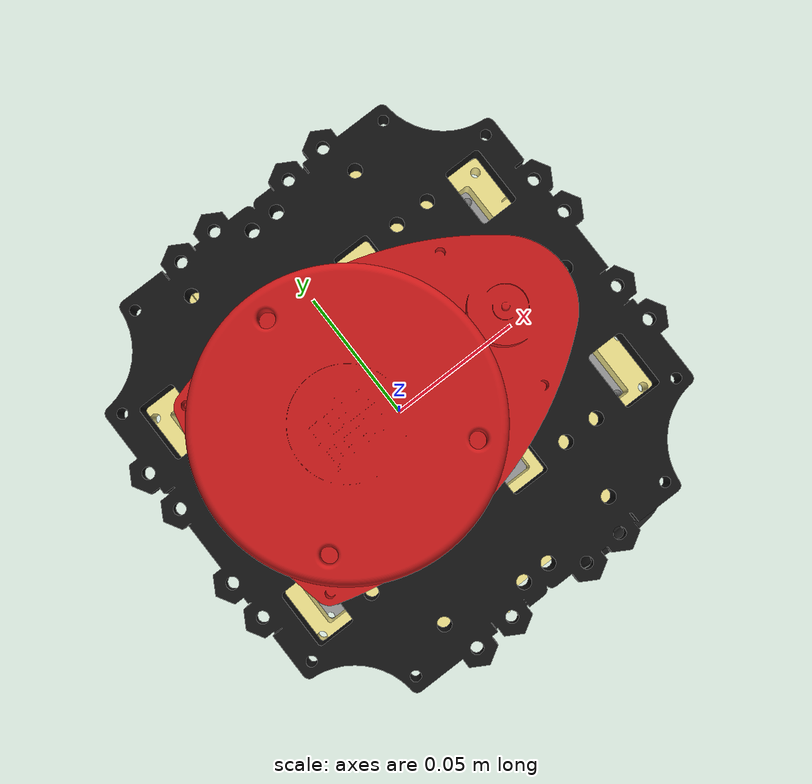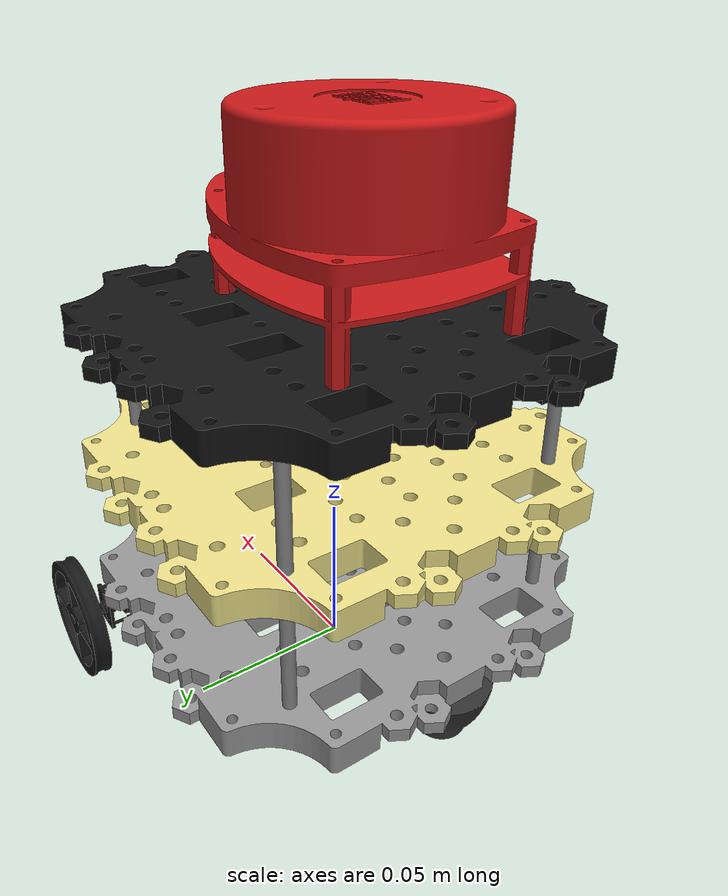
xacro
<?xml version="1.0"?>
<robot name="amr_n20" xmlns:xacro="http://www.ros.org/wiki/xacro">

  <!-- ========== 1. XACRO PROPERTIES (edit here, not below) ========== -->

  <!-- Chassis (waffle plate) -->
  <xacro:property name="chassis_length"  value="0.14"/>
  <xacro:property name="chassis_width"   value="0.14"/>
  <xacro:property name="chassis_height"  value="0.009"/>
  <xacro:property name="chassis_mass"    value="0.5"/>

  <!-- Wheels (N20 + GA12-N20 rim + rubber tire) -->
  <xacro:property name="wheel_radius"      value="0.0215"/>
  <xacro:property name="wheel_thickness"   value="0.015"/>
  <xacro:property name="wheel_separation"  value="0.152"/>   <!-- center-to-center -->
  <xacro:property name="wheel_mass"        value="0.05"/>    <!-- ESTIMATE -->
  <xacro:property name="wheel_offset_x" value="0.03"/>  <!-- Newly added 1 ASSUMPTION: tune to balance -->

  <!-- Caster -->
  <xacro:property name="caster_radius"   value="0.0135"/>
  <xacro:property name="caster_mass"     value="0.09"/>      <!-- ESTIMATE -->
  <xacro:property name="caster_offset_x" value="-0.055"/>    <!-- ASSUMPTION: verify -->

  <!-- N20 Encoded Motor -->
  <xacro:property name="motor_mass"     value="0.02"/>  <!-- ESTIMATE -->
  <xacro:property name="motor_offset_x" value="-0.02"/> <!-- how far inboard (toward center) from wheel, ASSUMPTION -->

  <!-- Electronics tower — ESTIMATED FROM PHOTO, verify & correct -->
  <xacro:property name="tier1_standoff_h" value="0.035"/>  <!-- changed1 -->
  <xacro:property name="tier1_deck_size"  value="0.14"/>  <!-- changed1 -->
  <xacro:property name="tier1_deck_t"     value="0.009"/>  <!-- same plate stock as chassis -->

  <xacro:property name="tier3_standoff_h" value="0.035"/>  <!-- changed2 -->
  <xacro:property name="tier3_deck_size"  value="0.14"/>
  <xacro:property name="tier3_deck_t"     value="0.009"/>  <!-- changed1 -->

  <xacro:property name="standoff_radius"  value="0.002"/>
  <xacro:property name="deck_mass"        value="0.03"/>     <!-- ESTIMATE, per deck -->

  <!-- Lidar (RPLIDAR A1M8) -->
  <xacro:property name="lidar_radius"    value="0.049"/>
  <xacro:property name="lidar_height"    value="0.0577"/>  <!-- corrected: true up-axis extent post-rotation -->
  <xacro:property name="lidar_mass"      value="0.19"/>

  <xacro:property name="PI" value="3.14159265"/>

  <!-- ========== 2. MATERIALS (for RViz, meshes have no color) ========== -->

  <material name="chassis_grey">
    <color rgba="0.6 0.6 0.6 1.0"/>
  </material>
  <material name="wheel_black">
    <color rgba="0.1 0.1 0.1 1.0"/>
  </material>
  <material name="caster_dark">
    <color rgba="0.2 0.2 0.2 1.0"/>
  </material>
  <material name="lidar_red">
    <color rgba="0.8 0.1 0.1 1.0"/>
  </material>
  <material name="deck_yellow">
    <color rgba="0.95 0.9 0.55 1.0"/>
  </material>
  <material name="deck_black">
    <color rgba="0.08 0.08 0.08 1.0"/>
  </material>
  <material name="standoff_grey">
    <color rgba="0.55 0.55 0.55 1.0"/>
  </material>

  <!-- ========== 3. REUSABLE INERTIA MACROS ========== -->

  <xacro:macro name="box_inertia" params="mass x y z">
    <inertia
      ixx="${(1/12)*mass*(y*y+z*z)}" ixy="0.0" ixz="0.0"
      iyy="${(1/12)*mass*(x*x+z*z)}" iyz="0.0"
      izz="${(1/12)*mass*(x*x+y*y)}"/>
  </xacro:macro>

  <xacro:macro name="cylinder_inertia" params="mass r h">
    <inertia
      ixx="${(1/12)*mass*(3*r*r+h*h)}" ixy="0.0" ixz="0.0"
      iyy="${(1/12)*mass*(3*r*r+h*h)}" iyz="0.0"
      izz="${(1/2)*mass*r*r}"/>
  </xacro:macro>

  <xacro:macro name="sphere_inertia" params="mass r">
    <inertia
      ixx="${(2/5)*mass*r*r}" ixy="0.0" ixz="0.0"
      iyy="${(2/5)*mass*r*r}" iyz="0.0"
      izz="${(2/5)*mass*r*r}"/>
  </xacro:macro>

  <!-- ============================================================
       4. BASE FOOTPRINT — massless reference frame at ground level
       ============================================================ -->

  <link name="base_footprint"/>

  <joint name="base_joint" type="fixed">
    <parent link="base_footprint"/>
    <child link="base_link"/>
    <origin xyz="0 0 ${wheel_radius}" rpy="0 0 0"/>
  </joint>

  <!-- ============================================================
       5. BASE LINK — the waffle plate chassis
       ============================================================ -->

  <link name="base_link">
    <visual>
      <origin xyz="0 0 ${chassis_height/2}" rpy="0 0 0"/>
      <geometry>
        <mesh filename="package://my_turtlebot_pkg/meshes/waffleplate.stl" scale="1 1 1"/>
      </geometry>
      <material name="chassis_grey"/>
    </visual>
    <collision>
      <origin xyz="0 0 ${chassis_height/2}" rpy="0 0 0"/>
      <geometry>
        <box size="${chassis_length} ${chassis_width} ${chassis_height}"/>
      </geometry>
    </collision>
    <inertial>
      <origin xyz="0 0 ${chassis_height/2}" rpy="0 0 0"/>
      <mass value="${chassis_mass}"/>
      <xacro:box_inertia mass="${chassis_mass}" x="${chassis_length}" y="${chassis_width}" z="${chassis_height}"/>
    </inertial>
  </link>

  <!-- ============================================================
       6. WHEELS
       ============================================================ -->

  <xacro:macro name="wheel" params="prefix reflect">
    <link name="${prefix}_wheel_link">
      <visual>
        <origin xyz="0 0 0" rpy="${PI/2} 0 0"/>
        <geometry>
          <mesh filename="package://my_turtlebot_pkg/meshes/n20wheels.stl" scale="1 1 1"/>
        </geometry>
        <material name="wheel_black"/>
      </visual>
      <collision>
        <origin xyz="0 0 0" rpy="${PI/2} 0 0"/>
        <geometry>
          <cylinder radius="${wheel_radius}" length="${wheel_thickness}"/>
        </geometry>
      </collision>
      <inertial>
        <mass value="${wheel_mass}"/>
        <xacro:cylinder_inertia mass="${wheel_mass}" r="${wheel_radius}" h="${wheel_thickness}"/>
      </inertial>
    </link>

    <joint name="${prefix}_wheel_joint" type="continuous">
      <parent link="base_link"/>
      <child link="${prefix}_wheel_link"/>
      <origin xyz="${wheel_offset_x} ${reflect * wheel_separation/2} 0" rpy="0 0 0"/>
      <axis xyz="0 1 0"/>
    </joint>
  </xacro:macro>

  <xacro:wheel prefix="left"  reflect="1"/>
  <xacro:wheel prefix="right" reflect="-1"/>

  <!-- ============================================================
       7. N20MOTORS
       ============================================================ -->
  <xacro:macro name="motor" params="prefix reflect">
  <link name="${prefix}_motor_link">
    <visual>
      <origin xyz="0.0455 ${reflect * -0.018} 0" rpy="0 ${PI if reflect == -1 else 0} ${0 if reflect == -1 else PI}"/>
      <geometry>
        <mesh filename="package://my_turtlebot_pkg/meshes/n20motor_centered.stl" scale="0.001 0.001 0.001"/>
      </geometry>
      <material name="wheel_black"/>
    </visual>
    <!-- Collision -->
    <collision>
      <origin xyz="0.0455 ${reflect * -0.018} 0"
              rpy="0 ${PI if reflect == -1 else 0} ${0 if reflect == -1 else PI}"/>
      <geometry>
        <mesh filename="package://my_turtlebot_pkg/meshes/n20motor_centered.stl"
            scale="0.001 0.001 0.001"/>
      </geometry>
    </collision>

    <inertial>
      <mass value="${motor_mass}"/>
      <xacro:cylinder_inertia mass="${motor_mass}" r="0.006" h="0.0405"/>
    </inertial>
  </link>

  <joint name="${prefix}_motor_joint" type="fixed">
    <parent link="base_link"/>
    <child link="${prefix}_motor_link"/>
    <origin xyz="${motor_offset_x} ${reflect * wheel_separation/2} 0" rpy="0 0 0"/>
  </joint>
  </xacro:macro>

  <xacro:motor prefix="left"  reflect="1"/>
  <xacro:motor prefix="right" reflect="-1"/>

  <!-- ============================================================
       7. CASTER
       ============================================================ -->

  <link name="caster_link">
    <visual>
      <origin xyz="0 0 0.009" rpy="0 ${PI} 0"/>  <!--changed3 -->
      <geometry>
        <mesh filename="package://my_turtlebot_pkg/meshes/casters.stl" scale="1 1 1"/>
      </geometry>
      <material name="caster_dark"/>
    </visual>
    <collision>
      <origin xyz="0 0 0" rpy="0 0 0"/>
      <geometry>
        <sphere radius="${caster_radius}"/>
      </geometry>
    </collision>
    <inertial>
      <mass value="${caster_mass}"/>
      <xacro:sphere_inertia mass="${caster_mass}" r="${caster_radius}"/>
    </inertial>
  </link>

  <joint name="caster_joint" type="fixed">
    <parent link="base_link"/>
    <child link="caster_link"/>
    <origin xyz="${caster_offset_x} 0 ${caster_radius - wheel_radius}" rpy="0 0 0"/>
  </joint>

  <gazebo reference="caster_link">
    <mu1>0.05</mu1>
    <mu2>0.05</mu2>
  </gazebo>

  <xacro:macro name="standoff_rod" params="x y h dz">
    <visual>
      <origin xyz="${x} ${y} ${dz}" rpy="0 0 0"/>
      <geometry>
        <cylinder radius="${standoff_radius}" length="${h}"/>
      </geometry>
      <material name="standoff_grey"/>
    </visual>
  </xacro:macro>

  <xacro:macro name="tower_tier" params="name parent_link standoff_h deck_size deck_t z_gap material_deck">
    <link name="${name}_link">
      <visual>
        <!-- reuse the same waffleplate mesh, scaled down to this tier's footprint -->
        <origin xyz="0 0 0" rpy="0 0 0"/>
        <geometry>
          <mesh filename="package://my_turtlebot_pkg/meshes/waffleplate.stl"
                scale="${deck_size/chassis_length} ${deck_size/chassis_length} 1"/>
        </geometry>
        <material name="${material_deck}"/>
      </visual>
      <collision>
        <origin xyz="0 0 0" rpy="0 0 0"/>
        <geometry>
          <box size="${deck_size} ${deck_size} ${deck_t}"/>
        </geometry>
      </collision>
      <inertial>
        <mass value="${deck_mass}"/>
        <xacro:box_inertia mass="${deck_mass}" x="${deck_size}" y="${deck_size}" z="${deck_t}"/>
      </inertial>

      <xacro:standoff_rod x="${deck_size/2 - 0.025}"    y="${deck_size/2 - 0.025}"    h="${standoff_h}" dz="${-(deck_t/2 + standoff_h/2)}"/>
      <xacro:standoff_rod x="${-(deck_size/2 - 0.025)}" y="${deck_size/2 - 0.025}"    h="${standoff_h}" dz="${-(deck_t/2 + standoff_h/2)}"/>
      <xacro:standoff_rod x="${deck_size/2 - 0.025}"    y="${-(deck_size/2 - 0.025)}" h="${standoff_h}" dz="${-(deck_t/2 + standoff_h/2)}"/>
      <xacro:standoff_rod x="${-(deck_size/2 - 0.025)}" y="${-(deck_size/2 - 0.025)}" h="${standoff_h}" dz="${-(deck_t/2 + standoff_h/2)}"/>
    </link>

    <joint name="${name}_joint" type="fixed">
      <parent link="${parent_link}"/>
      <child link="${name}_link"/>
      <origin xyz="0 0 ${z_gap}" rpy="0 0 0"/>
    </joint>
  </xacro:macro>

  <xacro:tower_tier name="tier1" parent_link="base_link"
    standoff_h="${tier1_standoff_h}" deck_size="${tier1_deck_size}" deck_t="${tier1_deck_t}"
    z_gap="${chassis_height + tier1_standoff_h + tier1_deck_t/2}" material_deck="deck_yellow"/>

  <xacro:tower_tier name="tier3" parent_link="tier1_link"
    standoff_h="${tier3_standoff_h}" deck_size="${tier3_deck_size}" deck_t="${tier3_deck_t}"
    z_gap="${tier1_deck_t/2 + tier3_standoff_h + tier3_deck_t/2}" material_deck="deck_black"/>

  <link name="lidar_link">
    <visual>
      <!-- mesh's real "up" axis is its own Y, not Z — rotate 90 deg about X
           to bring it in line with the world Z (up) axis -->
      <origin xyz="0 0 0" rpy="${PI/2} 0 0"/>
      <geometry>
        <mesh filename="package://my_turtlebot_pkg/meshes/rplidar.STL" scale="1 1 1"/>
      </geometry>
      <material name="lidar_red"/>
    </visual>
    <collision>
      <origin xyz="0 0 0" rpy="0 0 0"/>
      <geometry>
        <cylinder radius="${lidar_radius}" length="${lidar_height}"/>
      </geometry>
    </collision>
    <inertial>
      <mass value="${lidar_mass}"/>
      <xacro:cylinder_inertia mass="${lidar_mass}" r="${lidar_radius}" h="${lidar_height}"/>
    </inertial>
  </link>

  <joint name="lidar_joint" type="fixed">
    <parent link="tier3_link"/>
    <child link="lidar_link"/>
    <origin xyz="0 0 ${tier3_deck_t/2 + lidar_height/2}" rpy="0 0 0"/>
  </joint>
<!-- ============================================================
     10. GAZEBO PLUGINS — DiffDrive + LiDAR sensor
     ============================================================ -->

<gazebo>
  <plugin filename="gz-sim-diff-drive-system"
          name="gz::sim::systems::DiffDrive">
    <left_joint>left_wheel_joint</left_joint>
    <right_joint>right_wheel_joint</right_joint>
    <wheel_separation>${wheel_separation}</wheel_separation>
    <wheel_radius>${wheel_radius}</wheel_radius>
    <odom_publish_frequency>30</odom_publish_frequency>
    <topic>cmd_vel</topic>
    <odom_topic>odom</odom_topic>
    <tf_topic>tf</tf_topic>
    <frame_id>odom</frame_id>
    <child_frame_id>base_footprint</child_frame_id>
  </plugin>

  <plugin filename="gz-sim-joint-state-publisher-system"
          name="gz::sim::systems::JointStatePublisher">
  </plugin>
</gazebo>

<gazebo reference="lidar_link">
  <sensor name="lidar_sensor" type="gpu_lidar">
    <pose>0 0 0 0 0 0</pose>
    <topic>scan</topic>
    <gz_frame_id>lidar_link</gz_frame_id>
    <update_rate>10</update_rate>
    <lidar>
      <scan>
        <horizontal>
          <samples>360</samples>
          <resolution>1</resolution>
          <min_angle>-3.14159</min_angle>
          <max_angle>3.14159</max_angle>
        </horizontal>
      </scan>
      <range>
        <min>0.12</min>
        <max>12.0</max>
        <resolution>0.01</resolution>
      </range>
    </lidar>
    <always_on>1</always_on>
    <visualize>true</visualize>
  </sensor>
</gazebo>
</robot>
